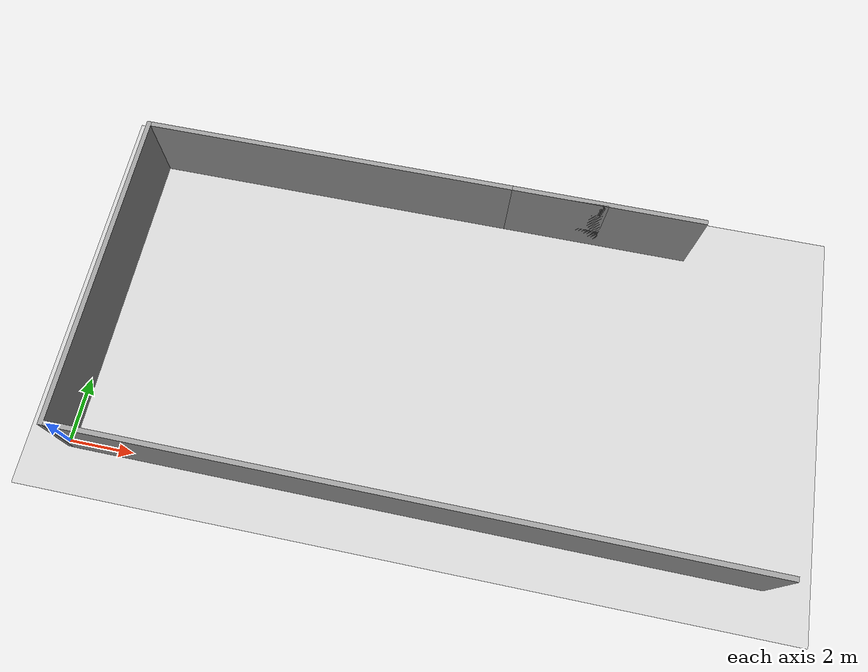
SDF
<sdf version="1.7">
 <world name="default">
  <light name="sun" type="directional">
   <cast_shadows>0</cast_shadows>
   <pose>0 0 10 0 -0 0</pose>
   <direction>0 0 -1</direction>
   <attenuation><range>10</range></attenuation>
   <spot><inner_angle>0</inner_angle><outer_angle>0</outer_angle><falloff>0</falloff></spot>
  </light>
  <model name="ground_plane">
   <static>1</static>
   <link name="link">
    <collision name="collision">
     <geometry><plane><normal>0 0 1</normal><size>100 100</size></plane></geometry>
     <surface><friction><ode><mu>100</mu><mu2>50</mu2></ode></friction></surface>
    </collision>
    <visual name="visual">
     <cast_shadows>0</cast_shadows>
     <geometry><plane><normal>0 0 1</normal><size>100 100</size></plane></geometry>
     <material>
      <script><uri>file://media/materials/scripts/gazebo.material</uri><name>Gazebo/Grey</name></script>
     </material>
    </visual>
   </link>
  </model>
  <gravity>0 0 -9.8</gravity>
  <magnetic_field>6e-06 2.3e-05 -4.2e-05</magnetic_field>
  <atmosphere type="adiabatic"/>
  <physics name="default_physics" default="0" type="ode">
   <max_step_size>0.001</max_step_size>
   <real_time_factor>1</real_time_factor>
   <real_time_update_rate>1000</real_time_update_rate>
  </physics>
  <scene><shadows>0</shadows><ambient>0.4 0.4 0.4 1</ambient><background>0.7 0.7 0.7 1</background></scene>
  <spherical_coordinates>
   <surface_model>EARTH_WGS84</surface_model>
   <latitude_deg>51.5379</latitude_deg>
   <longitude_deg>-0.00714196</longitude_deg>
   <elevation>0</elevation>
   <heading_deg>0</heading_deg>
  </spherical_coordinates>
  <model name="lab">
   <pose>0.1536 -0.122335 3e-06 -2.2e-05 0 0</pose>
   <link name="Wall_0">
    <collision name="Wall_0_Collision">
     <geometry><box><size>20.8 0.15 2.5</size></box></geometry>
     <pose>0 0 1.25 0 -0 0</pose>
    </collision>
    <visual name="Wall_0_Visual">
     <pose>0 0 1.25 0 -0 0</pose>
     <geometry><box><size>20.8 0.15 2.5</size></box></geometry>
     <material>
      <script><uri>file://media/materials/scripts/gazebo.material</uri><name>Gazebo/Grey</name></script>
      <ambient>1 1 1 1</ambient>
     </material>
     <meta><layer>0</layer></meta>
    </visual>
    <pose>10.4 0 0 0 -0 3.13893</pose>
    <inertial>
     <inertia><ixx>1</ixx><ixy>0</ixy><ixz>0</ixz><iyy>1</iyy><iyz>0</iyz><izz>1</izz></inertia>
     <mass>1</mass>
    </inertial>
   </link>
   <link name="Wall_1">
    <collision name="Wall_1_Collision">
     <geometry><box><size>10.15 0.15 2.5</size></box></geometry>
     <pose>0 0 1.25 0 -0 0</pose>
    </collision>
    <visual name="Wall_1_Visual">
     <pose>0 0 1.25 0 -0 0</pose>
     <geometry><box><size>10.15 0.15 2.5</size></box></geometry>
     <material>
      <script><uri>file://media/materials/scripts/gazebo.material</uri><name>Gazebo/Grey</name></script>
      <ambient>1 1 1 1</ambient>
     </material>
     <meta><layer>0</layer></meta>
    </visual>
    <pose>-0.075 5.03 0 0 -0 1.5708</pose>
    <inertial>
     <inertia><ixx>1</ixx><ixy>0</ixy><ixz>0</ixz><iyy>1</iyy><iyz>0</iyz><izz>1</izz></inertia>
     <mass>1</mass>
    </inertial>
   </link>
   <link name="Wall_2">
    <collision name="Wall_2_Collision">
     <geometry><box><size>14.6 0.15 2.5</size></box></geometry>
     <pose>0 0 1.25 0 -0 0</pose>
    </collision>
    <visual name="Wall_2_Visual">
     <pose>0 0 1.25 0 -0 0</pose>
     <geometry><box><size>14.6 0.15 2.5</size></box></geometry>
     <material>
      <script><uri>file://media/materials/scripts/gazebo.material</uri><name>Gazebo/Grey</name></script>
      <ambient>1 1 1 1</ambient>
     </material>
     <meta><layer>0</layer></meta>
    </visual>
    <pose>7.3 10.03 0 0 -0 0</pose>
    <inertial>
     <inertia><ixx>1</ixx><ixy>0</ixy><ixz>0</ixz><iyy>1</iyy><iyz>0</iyz><izz>1</izz></inertia>
     <mass>1</mass>
    </inertial>
   </link>
   <link name="Wall_3">
    <collision name="Wall_3_Collision">
     <geometry><box><size>6 0.15 2.5</size></box></geometry>
     <pose>0 0 1.25 0 -0 0</pose>
    </collision>
    <visual name="Wall_3_Visual">
     <pose>0 0 1.25 0 -0 0</pose>
     <geometry><box><size>6 0.15 2.5</size></box></geometry>
     <material>
      <script><uri>file://media/materials/scripts/gazebo.material</uri><name>Gazebo/Grey</name></script>
      <ambient>1 1 1 1</ambient>
     </material>
     <meta><layer>0</layer></meta>
    </visual>
    <pose>14.6 10.03 0 0 -0 0</pose>
    <inertial>
     <inertia><ixx>1</ixx><ixy>0</ixy><ixz>0</ixz><iyy>1</iyy><iyz>0</iyz><izz>1</izz></inertia>
     <mass>1</mass>
    </inertial>
   </link>
   <link name="Wall_4">
    <collision name="Wall_4_Collision">
     <geometry><box><size>6 0.15 2.5</size></box></geometry>
     <pose>0 0 1.25 0 -0 0</pose>
    </collision>
    <visual name="Wall_4_Visual">
     <pose>0 0 1.25 0 -0 0</pose>
     <geometry><box><size>6 0.15 2.5</size></box></geometry>
     <material>
      <script><uri>file://media/materials/scripts/gazebo.material</uri><name>Gazebo/Grey</name></script>
      <ambient>1 1 1 1</ambient>
     </material>
     <meta><layer>0</layer></meta>
    </visual>
    <pose>14.6 10.03 0 0 -0 0</pose>
    <inertial>
     <inertia><ixx>1</ixx><ixy>0</ixy><ixz>0</ixz><iyy>1</iyy><iyz>0</iyz><izz>1</izz></inertia>
     <mass>1</mass>
    </inertial>
   </link>
   <link name="Wall_5">
    <collision name="Wall_5_Collision">
     <geometry><box><size>6 0.15 2.5</size></box></geometry>
     <pose>0 0 1.25 0 -0 0</pose>
    </collision>
    <visual name="Wall_5_Visual">
     <pose>0 0 1.25 0 -0 0</pose>
     <geometry><box><size>6 0.15 2.5</size></box></geometry>
     <material>
      <script><uri>file://media/materials/scripts/gazebo.material</uri><name>Gazebo/Grey</name></script>
      <ambient>1 1 1 1</ambient>
     </material>
     <meta><layer>0</layer></meta>
    </visual>
    <pose>14.6 10.03 0 0 -0 0</pose>
    <inertial>
     <inertia><ixx>1</ixx><ixy>0</ixy><ixz>0</ixz><iyy>1</iyy><iyz>0</iyz><izz>1</izz></inertia>
     <mass>1</mass>
    </inertial>
   </link>
  </model>
 </world>
</sdf>
